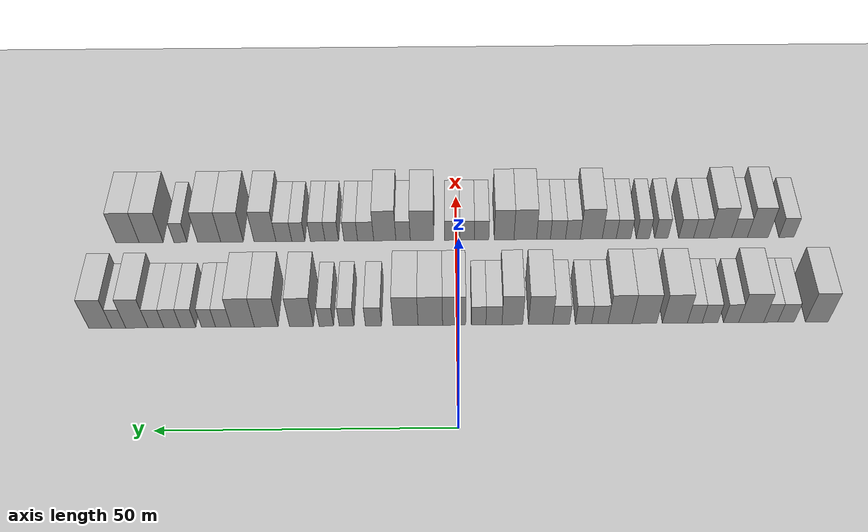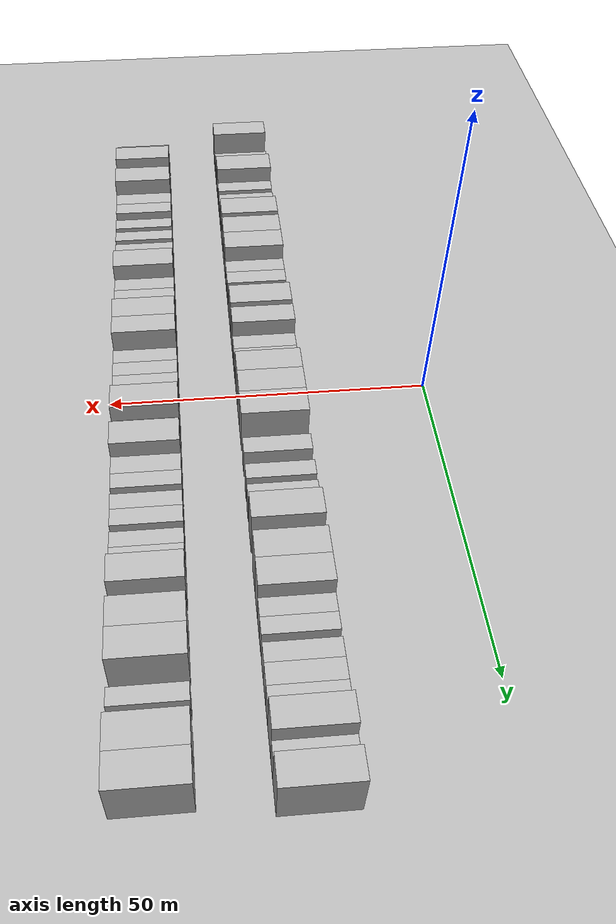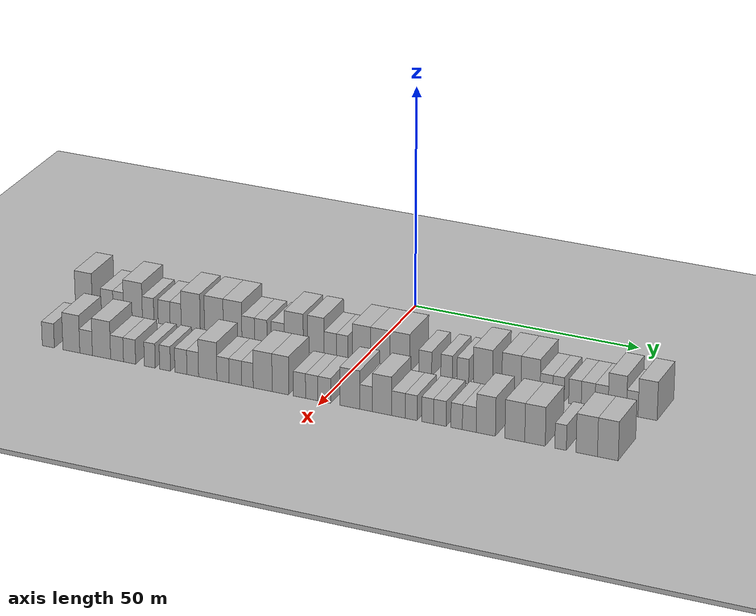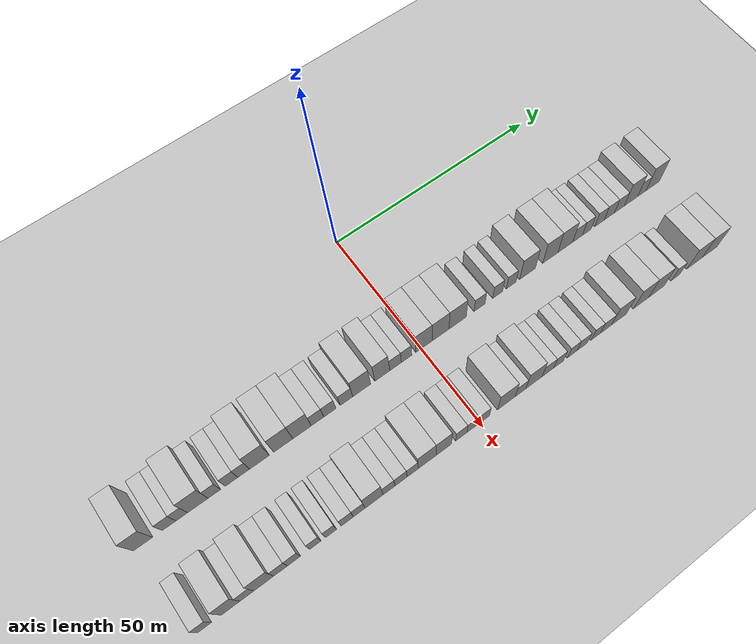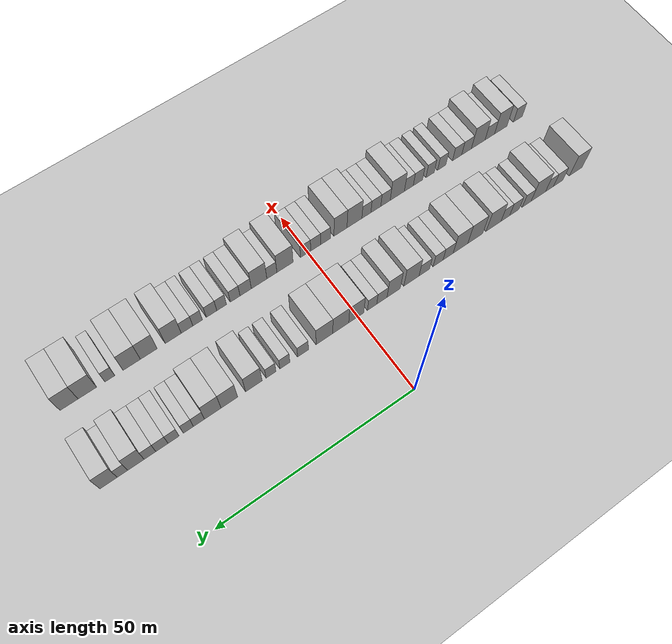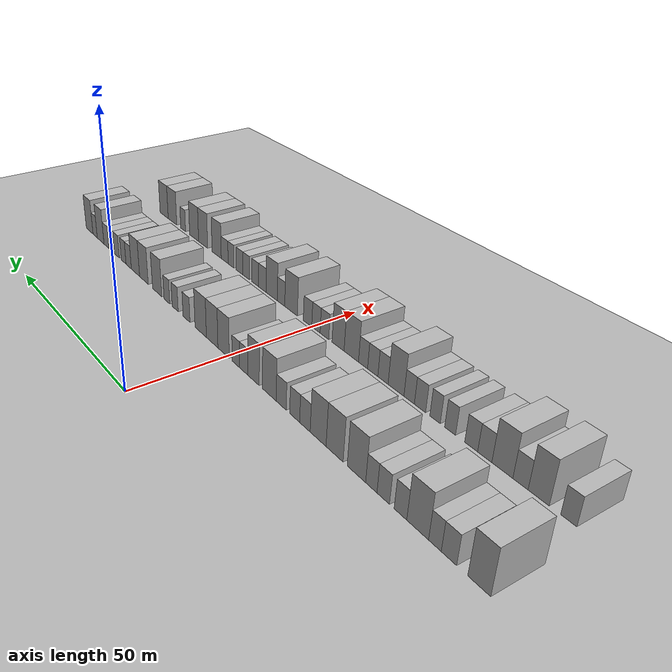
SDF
<sdf version="1.6">
 <world name="default">
  <include><name>ground_plane_1</name><uri>model://HANNAS_ground_plane</uri></include>
  <include>
   <name>ground_plane_2</name>
   <uri>model://HANNAS_ground_plane</uri>
   <pose>100 0 0  0 0 0</pose>
  </include>
  <model name="building_35">
   <static>1</static>
   <pose>25.0000 -63.0881 0 0.000000 0.000000 0.000000</pose>
   <link name="link">
    <pose>0 0 4.50 0 0 0</pose>
    <collision name="collision"><geometry><box><size>10.0000 4.0131 9.0000</size></box></geometry></collision>
    <visual name="visual">
     <cast_shadows>0</cast_shadows>
     <geometry><box><size>10.0000 4.0131 9.0000</size></box></geometry>
     <material>
      <script>
       <uri>model://HANNAS_wall/materials/scripts</uri>
       <uri>model://HANNAS_wall/materials/textures</uri>
       <name>vrc/HANNAS_wall</name>
      </script>
     </material>
    </visual>
   </link>
  </model>
  <model name="building_36">
   <static>1</static>
   <pose>25.0000 -57.6339 0 0.000000 0.000000 0.000000</pose>
   <link name="link">
    <pose>0 0 3.00 0 0 0</pose>
    <collision name="collision"><geometry><box><size>10.0000 2.8952 6.0000</size></box></geometry></collision>
    <visual name="visual">
     <cast_shadows>0</cast_shadows>
     <geometry><box><size>10.0000 2.8952 6.0000</size></box></geometry>
     <material>
      <script>
       <uri>model://HANNAS_wall/materials/scripts</uri>
       <uri>model://HANNAS_wall/materials/textures</uri>
       <name>vrc/HANNAS_wall</name>
      </script>
     </material>
    </visual>
   </link>
  </model>
  <model name="building_37">
   <static>1</static>
   <pose>25.0000 -54.9619 0 0.000000 0.000000 0.000000</pose>
   <link name="link">
    <pose>0 0 3.00 0 0 0</pose>
    <collision name="collision"><geometry><box><size>10.0000 2.4487 6.0000</size></box></geometry></collision>
    <visual name="visual">
     <cast_shadows>0</cast_shadows>
     <geometry><box><size>10.0000 2.4487 6.0000</size></box></geometry>
     <material>
      <script>
       <uri>model://HANNAS_wall/materials/scripts</uri>
       <uri>model://HANNAS_wall/materials/textures</uri>
       <name>vrc/HANNAS_wall</name>
      </script>
     </material>
    </visual>
   </link>
  </model>
  <model name="building_38">
   <static>1</static>
   <pose>25.0000 -51.5327 0 0.000000 0.000000 0.000000</pose>
   <link name="link">
    <pose>0 0 4.50 0 0 0</pose>
    <collision name="collision"><geometry><box><size>10.0000 4.4098 9.0000</size></box></geometry></collision>
    <visual name="visual">
     <cast_shadows>0</cast_shadows>
     <geometry><box><size>10.0000 4.4098 9.0000</size></box></geometry>
     <material>
      <script>
       <uri>model://HANNAS_wall/materials/scripts</uri>
       <uri>model://HANNAS_wall/materials/textures</uri>
       <name>vrc/HANNAS_wall</name>
      </script>
     </material>
    </visual>
   </link>
  </model>
  <model name="building_39">
   <static>1</static>
   <pose>25.0000 -47.9887 0 0.000000 0.000000 0.000000</pose>
   <link name="link">
    <pose>0 0 3.00 0 0 0</pose>
    <collision name="collision"><geometry><box><size>10.0000 2.6781 6.0000</size></box></geometry></collision>
    <visual name="visual">
     <cast_shadows>0</cast_shadows>
     <geometry><box><size>10.0000 2.6781 6.0000</size></box></geometry>
     <material>
      <script>
       <uri>model://HANNAS_wall/materials/scripts</uri>
       <uri>model://HANNAS_wall/materials/textures</uri>
       <name>vrc/HANNAS_wall</name>
      </script>
     </material>
    </visual>
   </link>
  </model>
  <model name="building_40">
   <static>1</static>
   <pose>25.0000 -44.2645 0 0.000000 0.000000 0.000000</pose>
   <link name="link">
    <pose>0 0 3.00 0 0 0</pose>
    <collision name="collision"><geometry><box><size>10.0000 2.7703 6.0000</size></box></geometry></collision>
    <visual name="visual">
     <cast_shadows>0</cast_shadows>
     <geometry><box><size>10.0000 2.7703 6.0000</size></box></geometry>
     <material>
      <script>
       <uri>model://HANNAS_wall/materials/scripts</uri>
       <uri>model://HANNAS_wall/materials/textures</uri>
       <name>vrc/HANNAS_wall</name>
      </script>
     </material>
    </visual>
   </link>
  </model>
  <model name="building_41">
   <static>1</static>
   <pose>25.0000 -41.5869 0 0.000000 0.000000 0.000000</pose>
   <link name="link">
    <pose>0 0 3.00 0 0 0</pose>
    <collision name="collision"><geometry><box><size>10.0000 2.5850 6.0000</size></box></geometry></collision>
    <visual name="visual">
     <cast_shadows>0</cast_shadows>
     <geometry><box><size>10.0000 2.5850 6.0000</size></box></geometry>
     <material>
      <script>
       <uri>model://HANNAS_wall/materials/scripts</uri>
       <uri>model://HANNAS_wall/materials/textures</uri>
       <name>vrc/HANNAS_wall</name>
      </script>
     </material>
    </visual>
   </link>
  </model>
  <model name="building_42">
   <static>1</static>
   <pose>25.0000 -38.0971 0 0.000000 0.000000 0.000000</pose>
   <link name="link">
    <pose>0 0 4.50 0 0 0</pose>
    <collision name="collision"><geometry><box><size>10.0000 4.3944 9.0000</size></box></geometry></collision>
    <visual name="visual">
     <cast_shadows>0</cast_shadows>
     <geometry><box><size>10.0000 4.3944 9.0000</size></box></geometry>
     <material>
      <script>
       <uri>model://HANNAS_wall/materials/scripts</uri>
       <uri>model://HANNAS_wall/materials/textures</uri>
       <name>vrc/HANNAS_wall</name>
      </script>
     </material>
    </visual>
   </link>
  </model>
  <model name="building_43">
   <static>1</static>
   <pose>25.0000 -32.7384 0 0.000000 0.000000 0.000000</pose>
   <link name="link">
    <pose>0 0 4.50 0 0 0</pose>
    <collision name="collision"><geometry><box><size>10.0000 4.3231 9.0000</size></box></geometry></collision>
    <visual name="visual">
     <cast_shadows>0</cast_shadows>
     <geometry><box><size>10.0000 4.3231 9.0000</size></box></geometry>
     <material>
      <script>
       <uri>model://HANNAS_wall/materials/scripts</uri>
       <uri>model://HANNAS_wall/materials/textures</uri>
       <name>vrc/HANNAS_wall</name>
      </script>
     </material>
    </visual>
   </link>
  </model>
  <model name="building_44">
   <static>1</static>
   <pose>25.0000 -28.4641 0 0.000000 0.000000 0.000000</pose>
   <link name="link">
    <pose>0 0 4.50 0 0 0</pose>
    <collision name="collision"><geometry><box><size>10.0000 4.2255 9.0000</size></box></geometry></collision>
    <visual name="visual">
     <cast_shadows>0</cast_shadows>
     <geometry><box><size>10.0000 4.2255 9.0000</size></box></geometry>
     <material>
      <script>
       <uri>model://HANNAS_wall/materials/scripts</uri>
       <uri>model://HANNAS_wall/materials/textures</uri>
       <name>vrc/HANNAS_wall</name>
      </script>
     </material>
    </visual>
   </link>
  </model>
  <model name="building_45">
   <static>1</static>
   <pose>25.0000 -24.9012 0 0.000000 0.000000 0.000000</pose>
   <link name="link">
    <pose>0 0 3.00 0 0 0</pose>
    <collision name="collision"><geometry><box><size>10.0000 2.9003 6.0000</size></box></geometry></collision>
    <visual name="visual">
     <cast_shadows>0</cast_shadows>
     <geometry><box><size>10.0000 2.9003 6.0000</size></box></geometry>
     <material>
      <script>
       <uri>model://HANNAS_wall/materials/scripts</uri>
       <uri>model://HANNAS_wall/materials/textures</uri>
       <name>vrc/HANNAS_wall</name>
      </script>
     </material>
    </visual>
   </link>
  </model>
  <model name="building_46">
   <static>1</static>
   <pose>25.0000 -22.0309 0 0.000000 0.000000 0.000000</pose>
   <link name="link">
    <pose>0 0 3.00 0 0 0</pose>
    <collision name="collision"><geometry><box><size>10.0000 2.8403 6.0000</size></box></geometry></collision>
    <visual name="visual">
     <cast_shadows>0</cast_shadows>
     <geometry><box><size>10.0000 2.8403 6.0000</size></box></geometry>
     <material>
      <script>
       <uri>model://HANNAS_wall/materials/scripts</uri>
       <uri>model://HANNAS_wall/materials/textures</uri>
       <name>vrc/HANNAS_wall</name>
      </script>
     </material>
    </visual>
   </link>
  </model>
  <model name="building_47">
   <static>1</static>
   <pose>25.0000 -18.1240 0 0.000000 0.000000 0.000000</pose>
   <link name="link">
    <pose>0 0 3.00 0 0 0</pose>
    <collision name="collision"><geometry><box><size>10.0000 2.9736 6.0000</size></box></geometry></collision>
    <visual name="visual">
     <cast_shadows>0</cast_shadows>
     <geometry><box><size>10.0000 2.9736 6.0000</size></box></geometry>
     <material>
      <script>
       <uri>model://HANNAS_wall/materials/scripts</uri>
       <uri>model://HANNAS_wall/materials/textures</uri>
       <name>vrc/HANNAS_wall</name>
      </script>
     </material>
    </visual>
   </link>
  </model>
  <model name="building_48">
   <static>1</static>
   <pose>25.0000 -14.5111 0 0.000000 0.000000 0.000000</pose>
   <link name="link">
    <pose>0 0 4.50 0 0 0</pose>
    <collision name="collision"><geometry><box><size>10.0000 4.2522 9.0000</size></box></geometry></collision>
    <visual name="visual">
     <cast_shadows>0</cast_shadows>
     <geometry><box><size>10.0000 4.2522 9.0000</size></box></geometry>
     <material>
      <script>
       <uri>model://HANNAS_wall/materials/scripts</uri>
       <uri>model://HANNAS_wall/materials/textures</uri>
       <name>vrc/HANNAS_wall</name>
      </script>
     </material>
    </visual>
   </link>
  </model>
  <model name="building_49">
   <static>1</static>
   <pose>25.0000 -9.5667 0 0.000000 0.000000 0.000000</pose>
   <link name="link">
    <pose>0 0 4.50 0 0 0</pose>
    <collision name="collision"><geometry><box><size>10.0000 3.6364 9.0000</size></box></geometry></collision>
    <visual name="visual">
     <cast_shadows>0</cast_shadows>
     <geometry><box><size>10.0000 3.6364 9.0000</size></box></geometry>
     <material>
      <script>
       <uri>model://HANNAS_wall/materials/scripts</uri>
       <uri>model://HANNAS_wall/materials/textures</uri>
       <name>vrc/HANNAS_wall</name>
      </script>
     </material>
    </visual>
   </link>
  </model>
  <model name="building_50">
   <static>1</static>
   <pose>25.0000 -6.3420 0 0.000000 0.000000 0.000000</pose>
   <link name="link">
    <pose>0 0 3.00 0 0 0</pose>
    <collision name="collision"><geometry><box><size>10.0000 2.8131 6.0000</size></box></geometry></collision>
    <visual name="visual">
     <cast_shadows>0</cast_shadows>
     <geometry><box><size>10.0000 2.8131 6.0000</size></box></geometry>
     <material>
      <script>
       <uri>model://HANNAS_wall/materials/scripts</uri>
       <uri>model://HANNAS_wall/materials/textures</uri>
       <name>vrc/HANNAS_wall</name>
      </script>
     </material>
    </visual>
   </link>
  </model>
  <model name="building_51">
   <static>1</static>
   <pose>25.0000 -3.6616 0 0.000000 0.000000 0.000000</pose>
   <link name="link">
    <pose>0 0 3.00 0 0 0</pose>
    <collision name="collision"><geometry><box><size>10.0000 2.5476 6.0000</size></box></geometry></collision>
    <visual name="visual">
     <cast_shadows>0</cast_shadows>
     <geometry><box><size>10.0000 2.5476 6.0000</size></box></geometry>
     <material>
      <script>
       <uri>model://HANNAS_wall/materials/scripts</uri>
       <uri>model://HANNAS_wall/materials/textures</uri>
       <name>vrc/HANNAS_wall</name>
      </script>
     </material>
    </visual>
   </link>
  </model>
  <model name="building_52">
   <static>1</static>
   <pose>25.0000 0.6370 0 0.000000 0.000000 0.000000</pose>
   <link name="link">
    <pose>0 0 4.50 0 0 0</pose>
    <collision name="collision"><geometry><box><size>10.0000 4.0496 9.0000</size></box></geometry></collision>
    <visual name="visual">
     <cast_shadows>0</cast_shadows>
     <geometry><box><size>10.0000 4.0496 9.0000</size></box></geometry>
     <material>
      <script>
       <uri>model://HANNAS_wall/materials/scripts</uri>
       <uri>model://HANNAS_wall/materials/textures</uri>
       <name>vrc/HANNAS_wall</name>
      </script>
     </material>
    </visual>
   </link>
  </model>
  <model name="building_53">
   <static>1</static>
   <pose>25.0000 4.7994 0 0.000000 0.000000 0.000000</pose>
   <link name="link">
    <pose>0 0 4.50 0 0 0</pose>
    <collision name="collision"><geometry><box><size>10.0000 4.2754 9.0000</size></box></geometry></collision>
    <visual name="visual">
     <cast_shadows>0</cast_shadows>
     <geometry><box><size>10.0000 4.2754 9.0000</size></box></geometry>
     <material>
      <script>
       <uri>model://HANNAS_wall/materials/scripts</uri>
       <uri>model://HANNAS_wall/materials/textures</uri>
       <name>vrc/HANNAS_wall</name>
      </script>
     </material>
    </visual>
   </link>
  </model>
  <model name="building_54">
   <static>1</static>
   <pose>25.0000 9.1349 0 0.000000 0.000000 0.000000</pose>
   <link name="link">
    <pose>0 0 4.50 0 0 0</pose>
    <collision name="collision"><geometry><box><size>10.0000 4.3956 9.0000</size></box></geometry></collision>
    <visual name="visual">
     <cast_shadows>0</cast_shadows>
     <geometry><box><size>10.0000 4.3956 9.0000</size></box></geometry>
     <material>
      <script>
       <uri>model://HANNAS_wall/materials/scripts</uri>
       <uri>model://HANNAS_wall/materials/textures</uri>
       <name>vrc/HANNAS_wall</name>
      </script>
     </material>
    </visual>
   </link>
  </model>
  <model name="building_55">
   <static>1</static>
   <pose>25.0000 14.7511 0 0.000000 0.000000 0.000000</pose>
   <link name="link">
    <pose>0 0 3.00 0 0 0</pose>
    <collision name="collision"><geometry><box><size>10.0000 2.8367 6.0000</size></box></geometry></collision>
    <visual name="visual">
     <cast_shadows>0</cast_shadows>
     <geometry><box><size>10.0000 2.8367 6.0000</size></box></geometry>
     <material>
      <script>
       <uri>model://HANNAS_wall/materials/scripts</uri>
       <uri>model://HANNAS_wall/materials/textures</uri>
       <name>vrc/HANNAS_wall</name>
      </script>
     </material>
    </visual>
   </link>
  </model>
  <model name="building_56">
   <static>1</static>
   <pose>25.0000 19.4567 0 0.000000 0.000000 0.000000</pose>
   <link name="link">
    <pose>0 0 3.00 0 0 0</pose>
    <collision name="collision"><geometry><box><size>10.0000 2.5744 6.0000</size></box></geometry></collision>
    <visual name="visual">
     <cast_shadows>0</cast_shadows>
     <geometry><box><size>10.0000 2.5744 6.0000</size></box></geometry>
     <material>
      <script>
       <uri>model://HANNAS_wall/materials/scripts</uri>
       <uri>model://HANNAS_wall/materials/textures</uri>
       <name>vrc/HANNAS_wall</name>
      </script>
     </material>
    </visual>
   </link>
  </model>
  <model name="building_57">
   <static>1</static>
   <pose>25.0000 23.0053 0 0.000000 0.000000 0.000000</pose>
   <link name="link">
    <pose>0 0 3.00 0 0 0</pose>
    <collision name="collision"><geometry><box><size>10.0000 2.5229 6.0000</size></box></geometry></collision>
    <visual name="visual">
     <cast_shadows>0</cast_shadows>
     <geometry><box><size>10.0000 2.5229 6.0000</size></box></geometry>
     <material>
      <script>
       <uri>model://HANNAS_wall/materials/scripts</uri>
       <uri>model://HANNAS_wall/materials/textures</uri>
       <name>vrc/HANNAS_wall</name>
      </script>
     </material>
    </visual>
   </link>
  </model>
  <model name="building_58">
   <static>1</static>
   <pose>25.0000 27.3619 0 0.000000 0.000000 0.000000</pose>
   <link name="link">
    <pose>0 0 4.50 0 0 0</pose>
    <collision name="collision"><geometry><box><size>10.0000 4.1903 9.0000</size></box></geometry></collision>
    <visual name="visual">
     <cast_shadows>0</cast_shadows>
     <geometry><box><size>10.0000 4.1903 9.0000</size></box></geometry>
     <material>
      <script>
       <uri>model://HANNAS_wall/materials/scripts</uri>
       <uri>model://HANNAS_wall/materials/textures</uri>
       <name>vrc/HANNAS_wall</name>
      </script>
     </material>
    </visual>
   </link>
  </model>
  <model name="building_59">
   <static>1</static>
   <pose>25.0000 33.5220 0 0.000000 0.000000 0.000000</pose>
   <link name="link">
    <pose>0 0 4.50 0 0 0</pose>
    <collision name="collision"><geometry><box><size>10.0000 4.1299 9.0000</size></box></geometry></collision>
    <visual name="visual">
     <cast_shadows>0</cast_shadows>
     <geometry><box><size>10.0000 4.1299 9.0000</size></box></geometry>
     <material>
      <script>
       <uri>model://HANNAS_wall/materials/scripts</uri>
       <uri>model://HANNAS_wall/materials/textures</uri>
       <name>vrc/HANNAS_wall</name>
      </script>
     </material>
    </visual>
   </link>
  </model>
  <model name="building_60">
   <static>1</static>
   <pose>25.0000 37.6324 0 0.000000 0.000000 0.000000</pose>
   <link name="link">
    <pose>0 0 4.50 0 0 0</pose>
    <collision name="collision"><geometry><box><size>10.0000 4.0908 9.0000</size></box></geometry></collision>
    <visual name="visual">
     <cast_shadows>0</cast_shadows>
     <geometry><box><size>10.0000 4.0908 9.0000</size></box></geometry>
     <material>
      <script>
       <uri>model://HANNAS_wall/materials/scripts</uri>
       <uri>model://HANNAS_wall/materials/textures</uri>
       <name>vrc/HANNAS_wall</name>
      </script>
     </material>
    </visual>
   </link>
  </model>
  <model name="building_61">
   <static>1</static>
   <pose>25.0000 41.0236 0 0.000000 0.000000 0.000000</pose>
   <link name="link">
    <pose>0 0 3.00 0 0 0</pose>
    <collision name="collision"><geometry><box><size>10.0000 2.6917 6.0000</size></box></geometry></collision>
    <visual name="visual">
     <cast_shadows>0</cast_shadows>
     <geometry><box><size>10.0000 2.6917 6.0000</size></box></geometry>
     <material>
      <script>
       <uri>model://HANNAS_wall/materials/scripts</uri>
       <uri>model://HANNAS_wall/materials/textures</uri>
       <name>vrc/HANNAS_wall</name>
      </script>
     </material>
    </visual>
   </link>
  </model>
  <model name="building_62">
   <static>1</static>
   <pose>25.0000 43.5973 0 0.000000 0.000000 0.000000</pose>
   <link name="link">
    <pose>0 0 3.00 0 0 0</pose>
    <collision name="collision"><geometry><box><size>10.0000 2.4557 6.0000</size></box></geometry></collision>
    <visual name="visual">
     <cast_shadows>0</cast_shadows>
     <geometry><box><size>10.0000 2.4557 6.0000</size></box></geometry>
     <material>
      <script>
       <uri>model://HANNAS_wall/materials/scripts</uri>
       <uri>model://HANNAS_wall/materials/textures</uri>
       <name>vrc/HANNAS_wall</name>
      </script>
     </material>
    </visual>
   </link>
  </model>
  <model name="building_63">
   <static>1</static>
   <pose>25.0000 47.1618 0 0.000000 0.000000 0.000000</pose>
   <link name="link">
    <pose>0 0 3.00 0 0 0</pose>
    <collision name="collision"><geometry><box><size>10.0000 2.6733 6.0000</size></box></geometry></collision>
    <visual name="visual">
     <cast_shadows>0</cast_shadows>
     <geometry><box><size>10.0000 2.6733 6.0000</size></box></geometry>
     <material>
      <script>
       <uri>model://HANNAS_wall/materials/scripts</uri>
       <uri>model://HANNAS_wall/materials/textures</uri>
       <name>vrc/HANNAS_wall</name>
      </script>
     </material>
    </visual>
   </link>
  </model>
  <model name="building_64">
   <static>1</static>
   <pose>25.0000 49.9579 0 0.000000 0.000000 0.000000</pose>
   <link name="link">
    <pose>0 0 3.00 0 0 0</pose>
    <collision name="collision"><geometry><box><size>10.0000 2.9188 6.0000</size></box></geometry></collision>
    <visual name="visual">
     <cast_shadows>0</cast_shadows>
     <geometry><box><size>10.0000 2.9188 6.0000</size></box></geometry>
     <material>
      <script>
       <uri>model://HANNAS_wall/materials/scripts</uri>
       <uri>model://HANNAS_wall/materials/textures</uri>
       <name>vrc/HANNAS_wall</name>
      </script>
     </material>
    </visual>
   </link>
  </model>
  <model name="building_65">
   <static>1</static>
   <pose>25.0000 52.8050 0 0.000000 0.000000 0.000000</pose>
   <link name="link">
    <pose>0 0 3.00 0 0 0</pose>
    <collision name="collision"><geometry><box><size>10.0000 2.7754 6.0000</size></box></geometry></collision>
    <visual name="visual">
     <cast_shadows>0</cast_shadows>
     <geometry><box><size>10.0000 2.7754 6.0000</size></box></geometry>
     <material>
      <script>
       <uri>model://HANNAS_wall/materials/scripts</uri>
       <uri>model://HANNAS_wall/materials/textures</uri>
       <name>vrc/HANNAS_wall</name>
      </script>
     </material>
    </visual>
   </link>
  </model>
  <model name="building_66">
   <static>1</static>
   <pose>25.0000 56.1253 0 0.000000 0.000000 0.000000</pose>
   <link name="link">
    <pose>0 0 4.50 0 0 0</pose>
    <collision name="collision"><geometry><box><size>10.0000 3.8653 9.0000</size></box></geometry></collision>
    <visual name="visual">
     <cast_shadows>0</cast_shadows>
     <geometry><box><size>10.0000 3.8653 9.0000</size></box></geometry>
     <material>
      <script>
       <uri>model://HANNAS_wall/materials/scripts</uri>
       <uri>model://HANNAS_wall/materials/textures</uri>
       <name>vrc/HANNAS_wall</name>
      </script>
     </material>
    </visual>
   </link>
  </model>
  <model name="building_67">
   <static>1</static>
   <pose>25.0000 59.2875 0 0.000000 0.000000 0.000000</pose>
   <link name="link">
    <pose>0 0 3.00 0 0 0</pose>
    <collision name="collision"><geometry><box><size>10.0000 2.4591 6.0000</size></box></geometry></collision>
    <visual name="visual">
     <cast_shadows>0</cast_shadows>
     <geometry><box><size>10.0000 2.4591 6.0000</size></box></geometry>
     <material>
      <script>
       <uri>model://HANNAS_wall/materials/scripts</uri>
       <uri>model://HANNAS_wall/materials/textures</uri>
       <name>vrc/HANNAS_wall</name>
      </script>
     </material>
    </visual>
   </link>
  </model>
  <model name="building_68">
   <static>1</static>
   <pose>25.0000 62.5133 0 0.000000 0.000000 0.000000</pose>
   <link name="link">
    <pose>0 0 4.50 0 0 0</pose>
    <collision name="collision"><geometry><box><size>10.0000 3.9925 9.0000</size></box></geometry></collision>
    <visual name="visual">
     <cast_shadows>0</cast_shadows>
     <geometry><box><size>10.0000 3.9925 9.0000</size></box></geometry>
     <material>
      <script>
       <uri>model://HANNAS_wall/materials/scripts</uri>
       <uri>model://HANNAS_wall/materials/textures</uri>
       <name>vrc/HANNAS_wall</name>
      </script>
     </material>
    </visual>
   </link>
  </model>
  <model name="building_138">
   <static>1</static>
   <pose>44.0000 -61.4603 0 0.000000 0.000000 0.000000</pose>
   <link name="link">
    <pose>0 0 3.00 0 0 0</pose>
    <collision name="collision"><geometry><box><size>10.0000 2.8120 6.0000</size></box></geometry></collision>
    <visual name="visual">
     <cast_shadows>0</cast_shadows>
     <geometry><box><size>10.0000 2.8120 6.0000</size></box></geometry>
     <material>
      <script>
       <uri>model://HANNAS_wall/materials/scripts</uri>
       <uri>model://HANNAS_wall/materials/textures</uri>
       <name>vrc/HANNAS_wall</name>
      </script>
     </material>
    </visual>
   </link>
  </model>
  <model name="building_139">
   <static>1</static>
   <pose>44.0000 -56.1075 0 0.000000 0.000000 0.000000</pose>
   <link name="link">
    <pose>0 0 4.50 0 0 0</pose>
    <collision name="collision"><geometry><box><size>10.0000 3.8936 9.0000</size></box></geometry></collision>
    <visual name="visual">
     <cast_shadows>0</cast_shadows>
     <geometry><box><size>10.0000 3.8936 9.0000</size></box></geometry>
     <material>
      <script>
       <uri>model://HANNAS_wall/materials/scripts</uri>
       <uri>model://HANNAS_wall/materials/textures</uri>
       <name>vrc/HANNAS_wall</name>
      </script>
     </material>
    </visual>
   </link>
  </model>
  <model name="building_140">
   <static>1</static>
   <pose>44.0000 -52.7035 0 0.000000 0.000000 0.000000</pose>
   <link name="link">
    <pose>0 0 3.00 0 0 0</pose>
    <collision name="collision"><geometry><box><size>10.0000 2.9144 6.0000</size></box></geometry></collision>
    <visual name="visual">
     <cast_shadows>0</cast_shadows>
     <geometry><box><size>10.0000 2.9144 6.0000</size></box></geometry>
     <material>
      <script>
       <uri>model://HANNAS_wall/materials/scripts</uri>
       <uri>model://HANNAS_wall/materials/textures</uri>
       <name>vrc/HANNAS_wall</name>
      </script>
     </material>
    </visual>
   </link>
  </model>
  <model name="building_141">
   <static>1</static>
   <pose>44.0000 -49.1530 0 0.000000 0.000000 0.000000</pose>
   <link name="link">
    <pose>0 0 4.50 0 0 0</pose>
    <collision name="collision"><geometry><box><size>10.0000 4.1867 9.0000</size></box></geometry></collision>
    <visual name="visual">
     <cast_shadows>0</cast_shadows>
     <geometry><box><size>10.0000 4.1867 9.0000</size></box></geometry>
     <material>
      <script>
       <uri>model://HANNAS_wall/materials/scripts</uri>
       <uri>model://HANNAS_wall/materials/textures</uri>
       <name>vrc/HANNAS_wall</name>
      </script>
     </material>
    </visual>
   </link>
  </model>
  <model name="building_142">
   <static>1</static>
   <pose>44.0000 -45.5868 0 0.000000 0.000000 0.000000</pose>
   <link name="link">
    <pose>0 0 3.00 0 0 0</pose>
    <collision name="collision"><geometry><box><size>10.0000 2.9456 6.0000</size></box></geometry></collision>
    <visual name="visual">
     <cast_shadows>0</cast_shadows>
     <geometry><box><size>10.0000 2.9456 6.0000</size></box></geometry>
     <material>
      <script>
       <uri>model://HANNAS_wall/materials/scripts</uri>
       <uri>model://HANNAS_wall/materials/textures</uri>
       <name>vrc/HANNAS_wall</name>
      </script>
     </material>
    </visual>
   </link>
  </model>
  <model name="building_143">
   <static>1</static>
   <pose>44.0000 -42.7257 0 0.000000 0.000000 0.000000</pose>
   <link name="link">
    <pose>0 0 3.00 0 0 0</pose>
    <collision name="collision"><geometry><box><size>10.0000 2.7767 6.0000</size></box></geometry></collision>
    <visual name="visual">
     <cast_shadows>0</cast_shadows>
     <geometry><box><size>10.0000 2.7767 6.0000</size></box></geometry>
     <material>
      <script>
       <uri>model://HANNAS_wall/materials/scripts</uri>
       <uri>model://HANNAS_wall/materials/textures</uri>
       <name>vrc/HANNAS_wall</name>
      </script>
     </material>
    </visual>
   </link>
  </model>
  <model name="building_144">
   <static>1</static>
   <pose>44.0000 -38.1013 0 0.000000 0.000000 0.000000</pose>
   <link name="link">
    <pose>0 0 3.00 0 0 0</pose>
    <collision name="collision"><geometry><box><size>10.0000 2.4722 6.0000</size></box></geometry></collision>
    <visual name="visual">
     <cast_shadows>0</cast_shadows>
     <geometry><box><size>10.0000 2.4722 6.0000</size></box></geometry>
     <material>
      <script>
       <uri>model://HANNAS_wall/materials/scripts</uri>
       <uri>model://HANNAS_wall/materials/textures</uri>
       <name>vrc/HANNAS_wall</name>
      </script>
     </material>
    </visual>
   </link>
  </model>
  <model name="building_145">
   <static>1</static>
   <pose>44.0000 -34.6432 0 0.000000 0.000000 0.000000</pose>
   <link name="link">
    <pose>0 0 3.00 0 0 0</pose>
    <collision name="collision"><geometry><box><size>10.0000 2.4440 6.0000</size></box></geometry></collision>
    <visual name="visual">
     <cast_shadows>0</cast_shadows>
     <geometry><box><size>10.0000 2.4440 6.0000</size></box></geometry>
     <material>
      <script>
       <uri>model://HANNAS_wall/materials/scripts</uri>
       <uri>model://HANNAS_wall/materials/textures</uri>
       <name>vrc/HANNAS_wall</name>
      </script>
     </material>
    </visual>
   </link>
  </model>
  <model name="building_146">
   <static>1</static>
   <pose>44.0000 -31.0547 0 0.000000 0.000000 0.000000</pose>
   <link name="link">
    <pose>0 0 3.00 0 0 0</pose>
    <collision name="collision"><geometry><box><size>10.0000 2.7330 6.0000</size></box></geometry></collision>
    <visual name="visual">
     <cast_shadows>0</cast_shadows>
     <geometry><box><size>10.0000 2.7330 6.0000</size></box></geometry>
     <material>
      <script>
       <uri>model://HANNAS_wall/materials/scripts</uri>
       <uri>model://HANNAS_wall/materials/textures</uri>
       <name>vrc/HANNAS_wall</name>
      </script>
     </material>
    </visual>
   </link>
  </model>
  <model name="building_147">
   <static>1</static>
   <pose>44.0000 -28.3825 0 0.000000 0.000000 0.000000</pose>
   <link name="link">
    <pose>0 0 3.00 0 0 0</pose>
    <collision name="collision"><geometry><box><size>10.0000 2.6115 6.0000</size></box></geometry></collision>
    <visual name="visual">
     <cast_shadows>0</cast_shadows>
     <geometry><box><size>10.0000 2.6115 6.0000</size></box></geometry>
     <material>
      <script>
       <uri>model://HANNAS_wall/materials/scripts</uri>
       <uri>model://HANNAS_wall/materials/textures</uri>
       <name>vrc/HANNAS_wall</name>
      </script>
     </material>
    </visual>
   </link>
  </model>
  <model name="building_148">
   <static>1</static>
   <pose>44.0000 -25.0239 0 0.000000 0.000000 0.000000</pose>
   <link name="link">
    <pose>0 0 4.50 0 0 0</pose>
    <collision name="collision"><geometry><box><size>10.0000 4.1057 9.0000</size></box></geometry></collision>
    <visual name="visual">
     <cast_shadows>0</cast_shadows>
     <geometry><box><size>10.0000 4.1057 9.0000</size></box></geometry>
     <material>
      <script>
       <uri>model://HANNAS_wall/materials/scripts</uri>
       <uri>model://HANNAS_wall/materials/textures</uri>
       <name>vrc/HANNAS_wall</name>
      </script>
     </material>
    </visual>
   </link>
  </model>
  <model name="building_149">
   <static>1</static>
   <pose>44.0000 -21.6053 0 0.000000 0.000000 0.000000</pose>
   <link name="link">
    <pose>0 0 3.00 0 0 0</pose>
    <collision name="collision"><geometry><box><size>10.0000 2.7313 6.0000</size></box></geometry></collision>
    <visual name="visual">
     <cast_shadows>0</cast_shadows>
     <geometry><box><size>10.0000 2.7313 6.0000</size></box></geometry>
     <material>
      <script>
       <uri>model://HANNAS_wall/materials/scripts</uri>
       <uri>model://HANNAS_wall/materials/textures</uri>
       <name>vrc/HANNAS_wall</name>
      </script>
     </material>
    </visual>
   </link>
  </model>
  <model name="building_150">
   <static>1</static>
   <pose>44.0000 -18.8310 0 0.000000 0.000000 0.000000</pose>
   <link name="link">
    <pose>0 0 3.00 0 0 0</pose>
    <collision name="collision"><geometry><box><size>10.0000 2.8173 6.0000</size></box></geometry></collision>
    <visual name="visual">
     <cast_shadows>0</cast_shadows>
     <geometry><box><size>10.0000 2.8173 6.0000</size></box></geometry>
     <material>
      <script>
       <uri>model://HANNAS_wall/materials/scripts</uri>
       <uri>model://HANNAS_wall/materials/textures</uri>
       <name>vrc/HANNAS_wall</name>
      </script>
     </material>
    </visual>
   </link>
  </model>
  <model name="building_151">
   <static>1</static>
   <pose>44.0000 -16.1368 0 0.000000 0.000000 0.000000</pose>
   <link name="link">
    <pose>0 0 3.00 0 0 0</pose>
    <collision name="collision"><geometry><box><size>10.0000 2.5711 6.0000</size></box></geometry></collision>
    <visual name="visual">
     <cast_shadows>0</cast_shadows>
     <geometry><box><size>10.0000 2.5711 6.0000</size></box></geometry>
     <material>
      <script>
       <uri>model://HANNAS_wall/materials/scripts</uri>
       <uri>model://HANNAS_wall/materials/textures</uri>
       <name>vrc/HANNAS_wall</name>
      </script>
     </material>
    </visual>
   </link>
  </model>
  <model name="building_152">
   <static>1</static>
   <pose>44.0000 -12.7443 0 0.000000 0.000000 0.000000</pose>
   <link name="link">
    <pose>0 0 4.50 0 0 0</pose>
    <collision name="collision"><geometry><box><size>10.0000 4.2138 9.0000</size></box></geometry></collision>
    <visual name="visual">
     <cast_shadows>0</cast_shadows>
     <geometry><box><size>10.0000 4.2138 9.0000</size></box></geometry>
     <material>
      <script>
       <uri>model://HANNAS_wall/materials/scripts</uri>
       <uri>model://HANNAS_wall/materials/textures</uri>
       <name>vrc/HANNAS_wall</name>
      </script>
     </material>
    </visual>
   </link>
  </model>
  <model name="building_153">
   <static>1</static>
   <pose>44.0000 -8.8072 0 0.000000 0.000000 0.000000</pose>
   <link name="link">
    <pose>0 0 4.50 0 0 0</pose>
    <collision name="collision"><geometry><box><size>10.0000 3.6603 9.0000</size></box></geometry></collision>
    <visual name="visual">
     <cast_shadows>0</cast_shadows>
     <geometry><box><size>10.0000 3.6603 9.0000</size></box></geometry>
     <material>
      <script>
       <uri>model://HANNAS_wall/materials/scripts</uri>
       <uri>model://HANNAS_wall/materials/textures</uri>
       <name>vrc/HANNAS_wall</name>
      </script>
     </material>
    </visual>
   </link>
  </model>
  <model name="building_154">
   <static>1</static>
   <pose>44.0000 -4.6223 0 0.000000 0.000000 0.000000</pose>
   <link name="link">
    <pose>0 0 3.00 0 0 0</pose>
    <collision name="collision"><geometry><box><size>10.0000 2.7096 6.0000</size></box></geometry></collision>
    <visual name="visual">
     <cast_shadows>0</cast_shadows>
     <geometry><box><size>10.0000 2.7096 6.0000</size></box></geometry>
     <material>
      <script>
       <uri>model://HANNAS_wall/materials/scripts</uri>
       <uri>model://HANNAS_wall/materials/textures</uri>
       <name>vrc/HANNAS_wall</name>
      </script>
     </material>
    </visual>
   </link>
  </model>
  <model name="building_155">
   <static>1</static>
   <pose>44.0000 -1.9106 0 0.000000 0.000000 0.000000</pose>
   <link name="link">
    <pose>0 0 3.00 0 0 0</pose>
    <collision name="collision"><geometry><box><size>10.0000 2.7138 6.0000</size></box></geometry></collision>
    <visual name="visual">
     <cast_shadows>0</cast_shadows>
     <geometry><box><size>10.0000 2.7138 6.0000</size></box></geometry>
     <material>
      <script>
       <uri>model://HANNAS_wall/materials/scripts</uri>
       <uri>model://HANNAS_wall/materials/textures</uri>
       <name>vrc/HANNAS_wall</name>
      </script>
     </material>
    </visual>
   </link>
  </model>
  <model name="building_156">
   <static>1</static>
   <pose>44.0000 0.8481 0 0.000000 0.000000 0.000000</pose>
   <link name="link">
    <pose>0 0 3.00 0 0 0</pose>
    <collision name="collision"><geometry><box><size>10.0000 2.8035 6.0000</size></box></geometry></collision>
    <visual name="visual">
     <cast_shadows>0</cast_shadows>
     <geometry><box><size>10.0000 2.8035 6.0000</size></box></geometry>
     <material>
      <script>
       <uri>model://HANNAS_wall/materials/scripts</uri>
       <uri>model://HANNAS_wall/materials/textures</uri>
       <name>vrc/HANNAS_wall</name>
      </script>
     </material>
    </visual>
   </link>
  </model>
  <model name="building_157">
   <static>1</static>
   <pose>44.0000 6.4411 0 0.000000 0.000000 0.000000</pose>
   <link name="link">
    <pose>0 0 4.50 0 0 0</pose>
    <collision name="collision"><geometry><box><size>10.0000 4.3825 9.0000</size></box></geometry></collision>
    <visual name="visual">
     <cast_shadows>0</cast_shadows>
     <geometry><box><size>10.0000 4.3825 9.0000</size></box></geometry>
     <material>
      <script>
       <uri>model://HANNAS_wall/materials/scripts</uri>
       <uri>model://HANNAS_wall/materials/textures</uri>
       <name>vrc/HANNAS_wall</name>
      </script>
     </material>
    </visual>
   </link>
  </model>
  <model name="building_158">
   <static>1</static>
   <pose>44.0000 9.9770 0 0.000000 0.000000 0.000000</pose>
   <link name="link">
    <pose>0 0 3.00 0 0 0</pose>
    <collision name="collision"><geometry><box><size>10.0000 2.6894 6.0000</size></box></geometry></collision>
    <visual name="visual">
     <cast_shadows>0</cast_shadows>
     <geometry><box><size>10.0000 2.6894 6.0000</size></box></geometry>
     <material>
      <script>
       <uri>model://HANNAS_wall/materials/scripts</uri>
       <uri>model://HANNAS_wall/materials/textures</uri>
       <name>vrc/HANNAS_wall</name>
      </script>
     </material>
    </visual>
   </link>
  </model>
  <model name="building_159">
   <static>1</static>
   <pose>44.0000 13.3762 0 0.000000 0.000000 0.000000</pose>
   <link name="link">
    <pose>0 0 4.50 0 0 0</pose>
    <collision name="collision"><geometry><box><size>10.0000 4.1091 9.0000</size></box></geometry></collision>
    <visual name="visual">
     <cast_shadows>0</cast_shadows>
     <geometry><box><size>10.0000 4.1091 9.0000</size></box></geometry>
     <material>
      <script>
       <uri>model://HANNAS_wall/materials/scripts</uri>
       <uri>model://HANNAS_wall/materials/textures</uri>
       <name>vrc/HANNAS_wall</name>
      </script>
     </material>
    </visual>
   </link>
  </model>
  <model name="building_160">
   <static>1</static>
   <pose>44.0000 16.9262 0 0.000000 0.000000 0.000000</pose>
   <link name="link">
    <pose>0 0 3.00 0 0 0</pose>
    <collision name="collision"><geometry><box><size>10.0000 2.9908 6.0000</size></box></geometry></collision>
    <visual name="visual">
     <cast_shadows>0</cast_shadows>
     <geometry><box><size>10.0000 2.9908 6.0000</size></box></geometry>
     <material>
      <script>
       <uri>model://HANNAS_wall/materials/scripts</uri>
       <uri>model://HANNAS_wall/materials/textures</uri>
       <name>vrc/HANNAS_wall</name>
      </script>
     </material>
    </visual>
   </link>
  </model>
  <model name="building_161">
   <static>1</static>
   <pose>44.0000 19.6893 0 0.000000 0.000000 0.000000</pose>
   <link name="link">
    <pose>0 0 3.00 0 0 0</pose>
    <collision name="collision"><geometry><box><size>10.0000 2.5356 6.0000</size></box></geometry></collision>
    <visual name="visual">
     <cast_shadows>0</cast_shadows>
     <geometry><box><size>10.0000 2.5356 6.0000</size></box></geometry>
     <material>
      <script>
       <uri>model://HANNAS_wall/materials/scripts</uri>
       <uri>model://HANNAS_wall/materials/textures</uri>
       <name>vrc/HANNAS_wall</name>
      </script>
     </material>
    </visual>
   </link>
  </model>
  <model name="building_162">
   <static>1</static>
   <pose>44.0000 23.2191 0 0.000000 0.000000 0.000000</pose>
   <link name="link">
    <pose>0 0 3.00 0 0 0</pose>
    <collision name="collision"><geometry><box><size>10.0000 2.5240 6.0000</size></box></geometry></collision>
    <visual name="visual">
     <cast_shadows>0</cast_shadows>
     <geometry><box><size>10.0000 2.5240 6.0000</size></box></geometry>
     <material>
      <script>
       <uri>model://HANNAS_wall/materials/scripts</uri>
       <uri>model://HANNAS_wall/materials/textures</uri>
       <name>vrc/HANNAS_wall</name>
      </script>
     </material>
    </visual>
   </link>
  </model>
  <model name="building_163">
   <static>1</static>
   <pose>44.0000 25.8400 0 0.000000 0.000000 0.000000</pose>
   <link name="link">
    <pose>0 0 3.00 0 0 0</pose>
    <collision name="collision"><geometry><box><size>10.0000 2.7177 6.0000</size></box></geometry></collision>
    <visual name="visual">
     <cast_shadows>0</cast_shadows>
     <geometry><box><size>10.0000 2.7177 6.0000</size></box></geometry>
     <material>
      <script>
       <uri>model://HANNAS_wall/materials/scripts</uri>
       <uri>model://HANNAS_wall/materials/textures</uri>
       <name>vrc/HANNAS_wall</name>
      </script>
     </material>
    </visual>
   </link>
  </model>
  <model name="building_164">
   <static>1</static>
   <pose>44.0000 29.4179 0 0.000000 0.000000 0.000000</pose>
   <link name="link">
    <pose>0 0 3.00 0 0 0</pose>
    <collision name="collision"><geometry><box><size>10.0000 2.4383 6.0000</size></box></geometry></collision>
    <visual name="visual">
     <cast_shadows>0</cast_shadows>
     <geometry><box><size>10.0000 2.4383 6.0000</size></box></geometry>
     <material>
      <script>
       <uri>model://HANNAS_wall/materials/scripts</uri>
       <uri>model://HANNAS_wall/materials/textures</uri>
       <name>vrc/HANNAS_wall</name>
      </script>
     </material>
    </visual>
   </link>
  </model>
  <model name="building_165">
   <static>1</static>
   <pose>44.0000 32.1134 0 0.000000 0.000000 0.000000</pose>
   <link name="link">
    <pose>0 0 3.00 0 0 0</pose>
    <collision name="collision"><geometry><box><size>10.0000 2.9527 6.0000</size></box></geometry></collision>
    <visual name="visual">
     <cast_shadows>0</cast_shadows>
     <geometry><box><size>10.0000 2.9527 6.0000</size></box></geometry>
     <material>
      <script>
       <uri>model://HANNAS_wall/materials/scripts</uri>
       <uri>model://HANNAS_wall/materials/textures</uri>
       <name>vrc/HANNAS_wall</name>
      </script>
     </material>
    </visual>
   </link>
  </model>
  <model name="building_166">
   <static>1</static>
   <pose>44.0000 35.6193 0 0.000000 0.000000 0.000000</pose>
   <link name="link">
    <pose>0 0 4.50 0 0 0</pose>
    <collision name="collision"><geometry><box><size>10.0000 4.0591 9.0000</size></box></geometry></collision>
    <visual name="visual">
     <cast_shadows>0</cast_shadows>
     <geometry><box><size>10.0000 4.0591 9.0000</size></box></geometry>
     <material>
      <script>
       <uri>model://HANNAS_wall/materials/scripts</uri>
       <uri>model://HANNAS_wall/materials/textures</uri>
       <name>vrc/HANNAS_wall</name>
      </script>
     </material>
    </visual>
   </link>
  </model>
  <model name="building_167">
   <static>1</static>
   <pose>44.0000 41.7368 0 0.000000 0.000000 0.000000</pose>
   <link name="link">
    <pose>0 0 4.50 0 0 0</pose>
    <collision name="collision"><geometry><box><size>10.0000 4.1760 9.0000</size></box></geometry></collision>
    <visual name="visual">
     <cast_shadows>0</cast_shadows>
     <geometry><box><size>10.0000 4.1760 9.0000</size></box></geometry>
     <material>
      <script>
       <uri>model://HANNAS_wall/materials/scripts</uri>
       <uri>model://HANNAS_wall/materials/textures</uri>
       <name>vrc/HANNAS_wall</name>
      </script>
     </material>
    </visual>
   </link>
  </model>
  <model name="building_168">
   <static>1</static>
   <pose>44.0000 45.9676 0 0.000000 0.000000 0.000000</pose>
   <link name="link">
    <pose>0 0 4.50 0 0 0</pose>
    <collision name="collision"><geometry><box><size>10.0000 4.2856 9.0000</size></box></geometry></collision>
    <visual name="visual">
     <cast_shadows>0</cast_shadows>
     <geometry><box><size>10.0000 4.2856 9.0000</size></box></geometry>
     <material>
      <script>
       <uri>model://HANNAS_wall/materials/scripts</uri>
       <uri>model://HANNAS_wall/materials/textures</uri>
       <name>vrc/HANNAS_wall</name>
      </script>
     </material>
    </visual>
   </link>
  </model>
  <model name="building_169">
   <static>1</static>
   <pose>44.0000 51.3133 0 0.000000 0.000000 0.000000</pose>
   <link name="link">
    <pose>0 0 3.00 0 0 0</pose>
    <collision name="collision"><geometry><box><size>10.0000 2.4058 6.0000</size></box></geometry></collision>
    <visual name="visual">
     <cast_shadows>0</cast_shadows>
     <geometry><box><size>10.0000 2.4058 6.0000</size></box></geometry>
     <material>
      <script>
       <uri>model://HANNAS_wall/materials/scripts</uri>
       <uri>model://HANNAS_wall/materials/textures</uri>
       <name>vrc/HANNAS_wall</name>
      </script>
     </material>
    </visual>
   </link>
  </model>
  <model name="building_170">
   <static>1</static>
   <pose>44.0000 56.7366 0 0.000000 0.000000 0.000000</pose>
   <link name="link">
    <pose>0 0 4.50 0 0 0</pose>
    <collision name="collision"><geometry><box><size>10.0000 4.4407 9.0000</size></box></geometry></collision>
    <visual name="visual">
     <cast_shadows>0</cast_shadows>
     <geometry><box><size>10.0000 4.4407 9.0000</size></box></geometry>
     <material>
      <script>
       <uri>model://HANNAS_wall/materials/scripts</uri>
       <uri>model://HANNAS_wall/materials/textures</uri>
       <name>vrc/HANNAS_wall</name>
      </script>
     </material>
    </visual>
   </link>
  </model>
  <model name="building_171">
   <static>1</static>
   <pose>44.0000 61.1078 0 0.000000 0.000000 0.000000</pose>
   <link name="link">
    <pose>0 0 4.50 0 0 0</pose>
    <collision name="collision"><geometry><box><size>10.0000 4.3018 9.0000</size></box></geometry></collision>
    <visual name="visual">
     <cast_shadows>0</cast_shadows>
     <geometry><box><size>10.0000 4.3018 9.0000</size></box></geometry>
     <material>
      <script>
       <uri>model://HANNAS_wall/materials/scripts</uri>
       <uri>model://HANNAS_wall/materials/textures</uri>
       <name>vrc/HANNAS_wall</name>
      </script>
     </material>
    </visual>
   </link>
  </model>
 </world>
</sdf>
